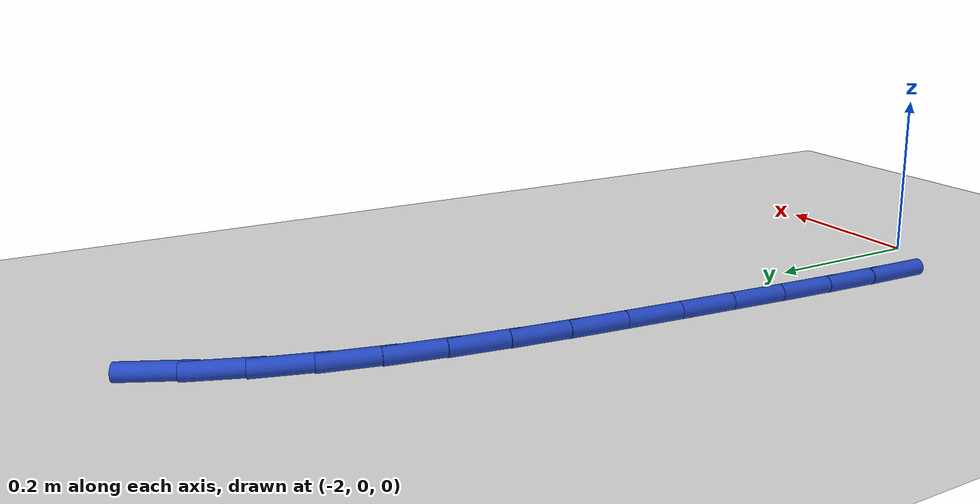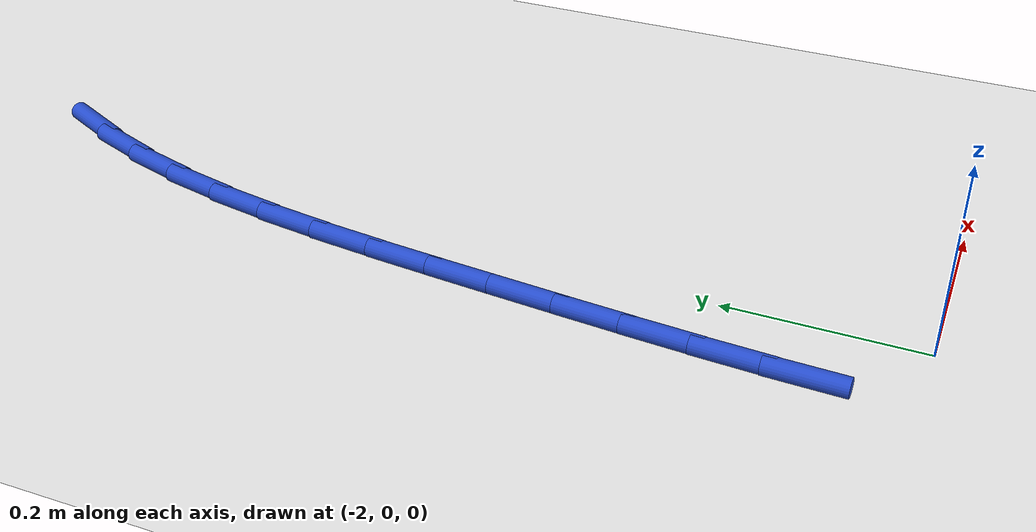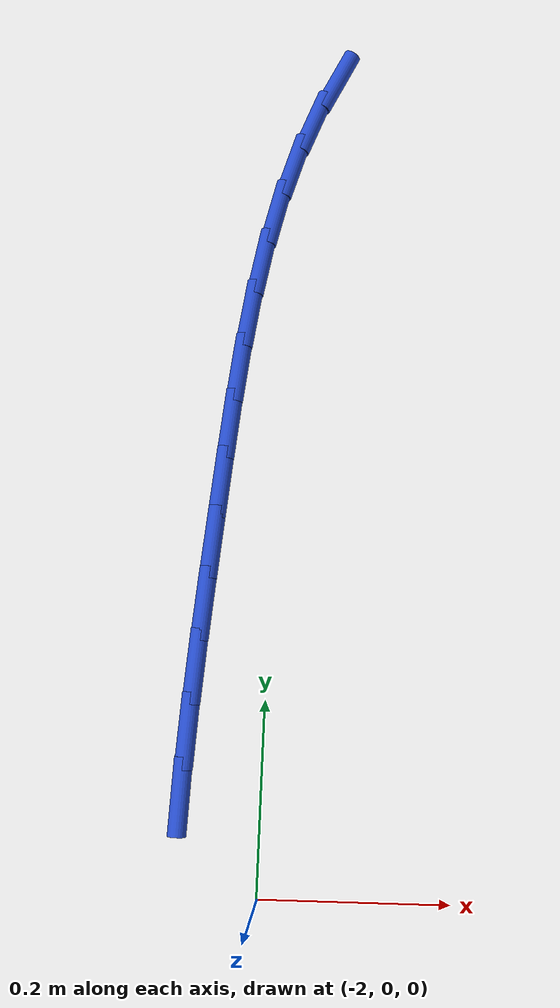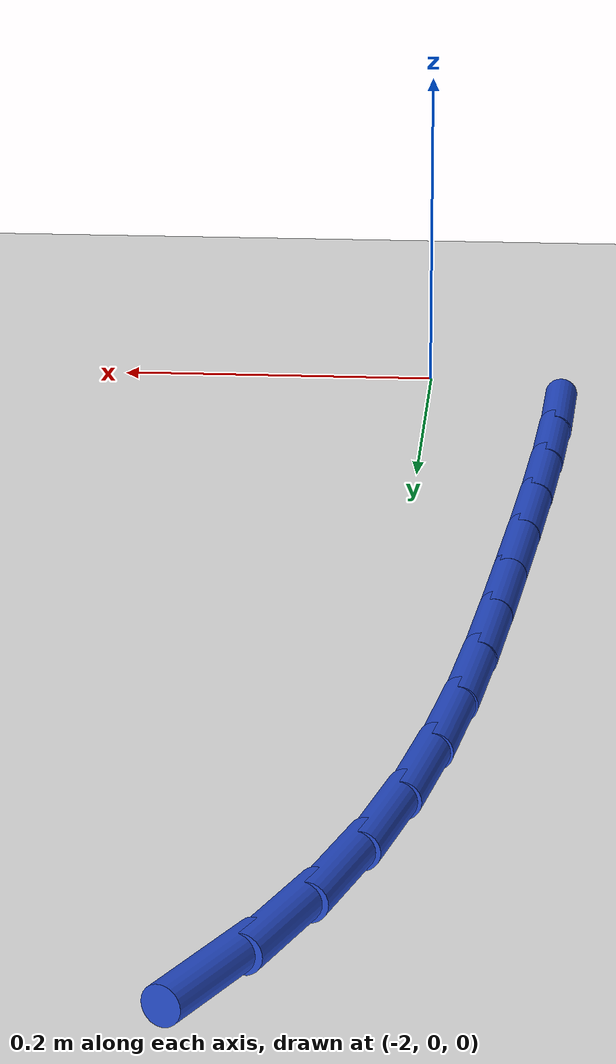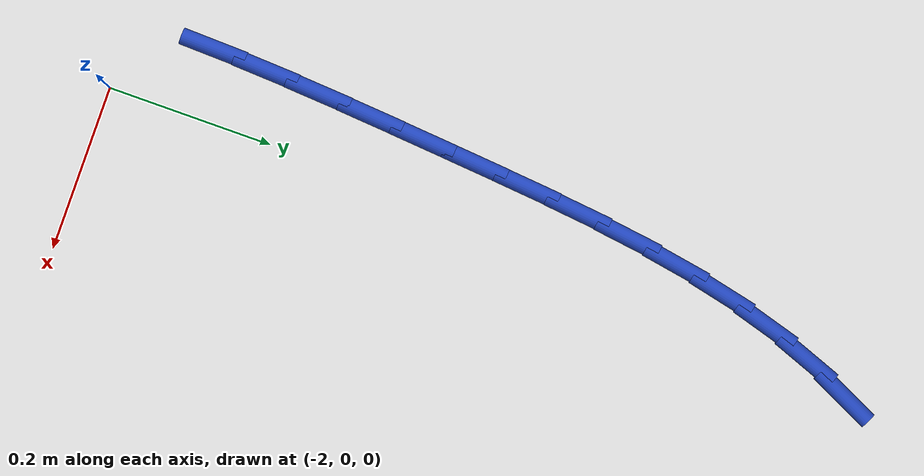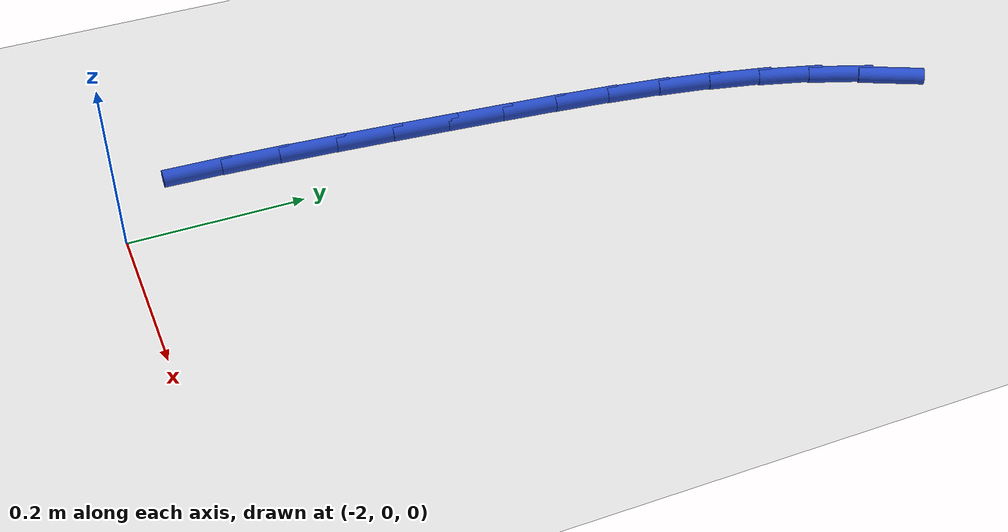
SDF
<sdf version="1.6">
 <world name="default">
  <model name="ground_plane">
   <static>1</static>
   <link name="link">
    <collision name="collision">
     <geometry><plane><normal>0 0 1</normal><size>100 100</size></plane></geometry>
     <surface><friction><ode><mu>100</mu><mu2>50</mu2></ode></friction></surface>
    </collision>
    <visual name="visual">
     <cast_shadows>0</cast_shadows>
     <geometry><plane><normal>0 0 1</normal><size>100 100</size></plane></geometry>
     <material>
      <script><uri>file://media/materials/scripts/gazebo.material</uri><name>Gazebo/WhiteGlow</name></script>
     </material>
    </visual>
   </link>
  </model>
  <model name="line">
   <link name="link_42">
    <pose>-1.94388995059147 0.9318484582688006 0.01 0 1.57 1.1209752474719616</pose>
    <collision name="collision">
     <geometry><cylinder><radius>0.01</radius><length>0.08</length></cylinder></geometry>
    </collision>
    <visual name="visual">
     <material>
      <script><name>Gazebo/Blue</name><uri>file://media/materials/scripts/gazebo.material</uri></script>
     </material>
     <geometry><cylinder><radius>0.01</radius><length>0.08</length></cylinder></geometry>
    </visual>
   </link>
   <link name="link_43">
    <pose>-1.970773884842212 0.8761690504707375 0.01 0 1.57 1.2090876860153472</pose>
    <collision name="collision">
     <geometry><cylinder><radius>0.01</radius><length>0.08</length></cylinder></geometry>
    </collision>
    <visual name="visual">
     <material>
      <script><name>Gazebo/Blue</name><uri>file://media/materials/scripts/gazebo.material</uri></script>
     </material>
     <geometry><cylinder><radius>0.01</radius><length>0.08</length></cylinder></geometry>
    </visual>
   </link>
   <link name="link_44">
    <pose>-1.992768808170894 0.818035992089686 0.01 0 1.57 1.2843617836668118</pose>
    <collision name="collision">
     <geometry><cylinder><radius>0.01</radius><length>0.08</length></cylinder></geometry>
    </collision>
    <visual name="visual">
     <material>
      <script><name>Gazebo/Blue</name><uri>file://media/materials/scripts/gazebo.material</uri></script>
     </material>
     <geometry><cylinder><radius>0.01</radius><length>0.08</length></cylinder></geometry>
    </visual>
   </link>
   <link name="link_45">
    <pose>-2.0105256240472174 0.7577481483926806 0.01 0 1.57 1.34661552877338</pose>
    <collision name="collision">
     <geometry><cylinder><radius>0.01</radius><length>0.08</length></cylinder></geometry>
    </collision>
    <visual name="visual">
     <material>
      <script><name>Gazebo/Blue</name><uri>file://media/materials/scripts/gazebo.material</uri></script>
     </material>
     <geometry><cylinder><radius>0.01</radius><length>0.08</length></cylinder></geometry>
    </visual>
   </link>
   <link name="link_46">
    <pose>-2.0246952359408823 0.6956043846467547 0.01 0 1.57 1.396246069773021</pose>
    <collision name="collision">
     <geometry><cylinder><radius>0.01</radius><length>0.08</length></cylinder></geometry>
    </collision>
    <visual name="visual">
     <material>
      <script><name>Gazebo/Blue</name><uri>file://media/materials/scripts/gazebo.material</uri></script>
     </material>
     <geometry><cylinder><radius>0.01</radius><length>0.08</length></cylinder></geometry>
    </visual>
   </link>
   <link name="link_47">
    <pose>-2.0359285473215882 0.6319035661189418 0.01 0 1.57 1.433910667101869</pose>
    <collision name="collision">
     <geometry><cylinder><radius>0.01</radius><length>0.08</length></cylinder></geometry>
    </collision>
    <visual name="visual">
     <material>
      <script><name>Gazebo/Blue</name><uri>file://media/materials/scripts/gazebo.material</uri></script>
     </material>
     <geometry><cylinder><radius>0.01</radius><length>0.08</length></cylinder></geometry>
    </visual>
   </link>
   <link name="link_48">
    <pose>-2.0448764616590367 0.5669445580762761 0.01 0 1.57 1.460301524736904</pose>
    <collision name="collision">
     <geometry><cylinder><radius>0.01</radius><length>0.08</length></cylinder></geometry>
    </collision>
    <visual name="visual">
     <material>
      <script><name>Gazebo/Blue</name><uri>file://media/materials/scripts/gazebo.material</uri></script>
     </material>
     <geometry><cylinder><radius>0.01</radius><length>0.08</length></cylinder></geometry>
    </visual>
   </link>
   <link name="link_49">
    <pose>-2.052189882422928 0.5010262257857911 0.01 0 1.57 1.4760084539796052</pose>
    <collision name="collision">
     <geometry><cylinder><radius>0.01</radius><length>0.08</length></cylinder></geometry>
    </collision>
    <visual name="visual">
     <material>
      <script><name>Gazebo/Blue</name><uri>file://media/materials/scripts/gazebo.material</uri></script>
     </material>
     <geometry><cylinder><radius>0.01</radius><length>0.08</length></cylinder></geometry>
    </visual>
   </link>
   <link name="link_50">
    <pose>-2.0585197130829616 0.43444743451452084 0.01 0 1.57 1.4816691496301702</pose>
    <collision name="collision">
     <geometry><cylinder><radius>0.01</radius><length>0.08</length></cylinder></geometry>
    </collision>
    <visual name="visual">
     <material>
      <script><name>Gazebo/Blue</name><uri>file://media/materials/scripts/gazebo.material</uri></script>
     </material>
     <geometry><cylinder><radius>0.01</radius><length>0.08</length></cylinder></geometry>
    </visual>
   </link>
   <link name="link_51">
    <pose>-2.064501976659559 0.36750472379541327 0.01 0 1.57 1.483950191235603</pose>
    <collision name="collision">
     <geometry><cylinder><radius>0.01</radius><length>0.08</length></cylinder></geometry>
    </collision>
    <visual name="visual">
     <material>
      <script><name>Gazebo/Blue</name><uri>file://media/materials/scripts/gazebo.material</uri></script>
     </material>
     <geometry><cylinder><radius>0.01</radius><length>0.08</length></cylinder></geometry>
    </visual>
   </link>
   <link name="link_52">
    <pose>-2.0703420789871383 0.30042733001428984 0.01 0 1.57 1.490191038876288</pose>
    <collision name="collision">
     <geometry><cylinder><radius>0.01</radius><length>0.08</length></cylinder></geometry>
    </collision>
    <visual name="visual">
     <material>
      <script><name>Gazebo/Blue</name><uri>file://media/materials/scripts/gazebo.material</uri></script>
     </material>
     <geometry><cylinder><radius>0.01</radius><length>0.08</length></cylinder></geometry>
    </visual>
   </link>
   <link name="link_53">
    <pose>-2.0757591137322997 0.2333684815841254 0.01 0 1.57 1.5008417549352058</pose>
    <collision name="collision">
     <geometry><cylinder><radius>0.01</radius><length>0.08</length></cylinder></geometry>
    </collision>
    <visual name="visual">
     <material>
      <script><name>Gazebo/Blue</name><uri>file://media/materials/scripts/gazebo.material</uri></script>
     </material>
     <geometry><cylinder><radius>0.01</radius><length>0.08</length></cylinder></geometry>
    </visual>
   </link>
   <link name="link_54">
    <pose>-2.0804461034316746 0.16647733214068447 0.01 0 1.57 1.5160256888363246</pose>
    <collision name="collision">
     <geometry><cylinder><radius>0.01</radius><length>0.08</length></cylinder></geometry>
    </collision>
    <visual name="visual">
     <material>
      <script><name>Gazebo/Blue</name><uri>file://media/materials/scripts/gazebo.material</uri></script>
     </material>
     <geometry><cylinder><radius>0.01</radius><length>0.08</length></cylinder></geometry>
    </visual>
   </link>
   <link name="link_55">
    <pose>-2.0840960706218947 0.09990303531973102 0.01 0 1.57 1.5359287990862474</pose>
    <collision name="collision">
     <geometry><cylinder><radius>0.01</radius><length>0.08</length></cylinder></geometry>
    </collision>
    <visual name="visual">
     <material>
      <script><name>Gazebo/Blue</name><uri>file://media/materials/scripts/gazebo.material</uri></script>
     </material>
     <geometry><cylinder><radius>0.01</radius><length>0.08</length></cylinder></geometry>
    </visual>
   </link>
  </model>
 </world>
</sdf>
